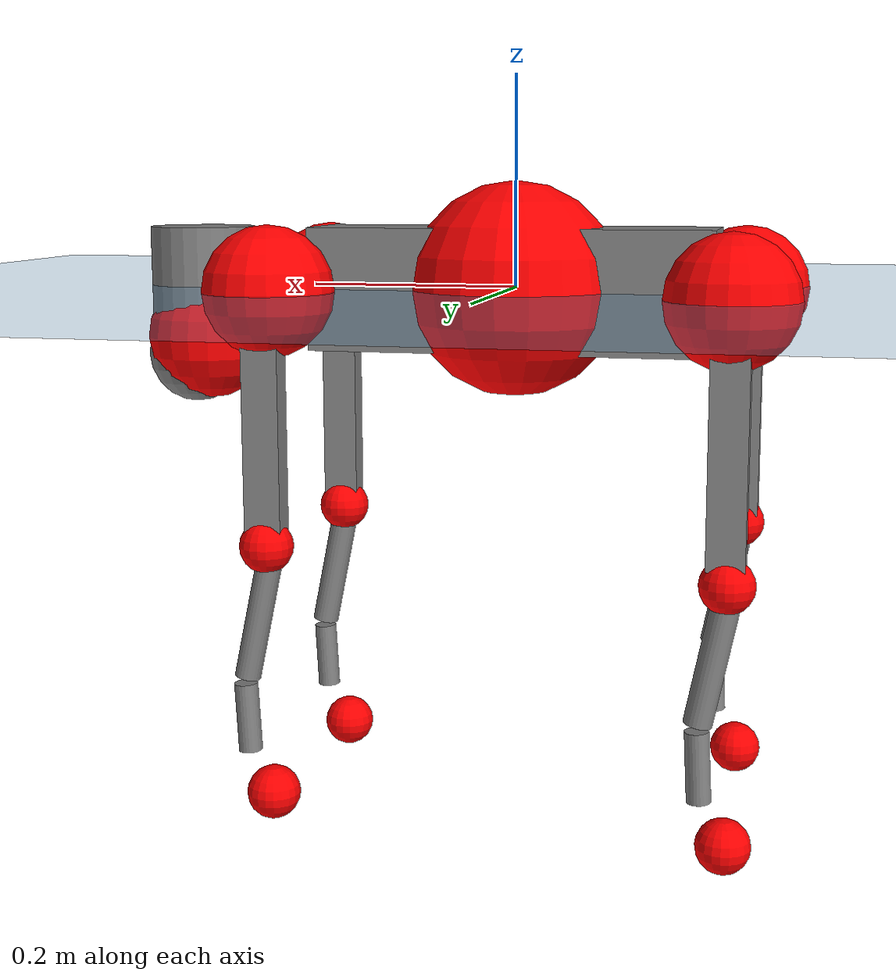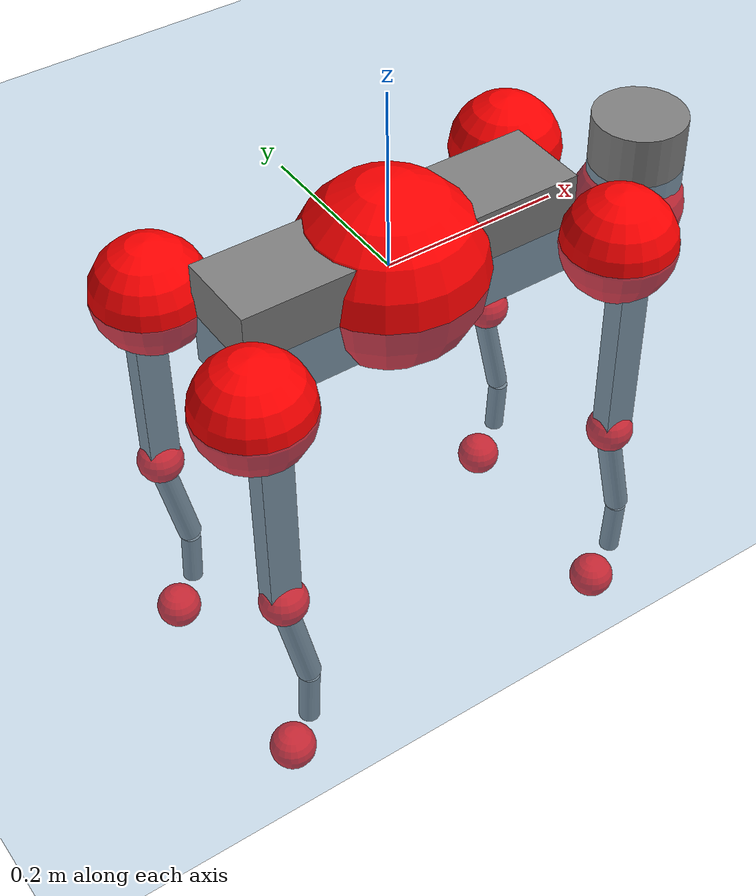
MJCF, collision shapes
<mujoco model="go2">
  <compiler angle="radian" assetdir="assets" balanceinertia="true" inertiafromgeom="false"/>

  <option timestep="0.005" density="1.2" viscosity="2e-05"/>

  <size nkey="1"/>

  <visual>
    <quality shadowsize="8192"/>
    <map shadowclip="0.5"/>
  </visual>

  <default>
    <default class="/">
      <geom contype="0" conaffinity="0" group="1" solref="-1000 -80"/>
      <site size="0.01 0.005 0.005" group="5"/>
      <general forcelimited="true" biastype="affine" gainprm="20" biasprm="0 -20 -0.5"/>
      <default class="go2">
        <joint armature="0.01" damping="0.01" frictionloss="0.2"/>
        <geom condim="1" margin="0.001"/>
        <default class="visual">
          <geom type="mesh" group="2"/>
        </default>
        <default class="collision">
          <geom group="3"/>
          <default class="foot">
            <geom size="0.022 0 0" condim="6" priority="1" friction="0.8 0.02 0.01" solimp="0.015 1 0.022"/>
          </default>
        </default>
        <default class="reward_collision_sphere">
          <geom group="5" rgba="1 0 0 1"/>
        </default>
      </default>
    </default>
  </default>

  <asset>
    <texture type="skybox" colorspace="auto" name="//unnamed_texture_0" builtin="gradient" rgb1="0.95 0.95 0.95" rgb2="0.95 0.95 0.95" width="100" height="600"/>
    <texture type="2d" colorspace="auto" name="texplane" builtin="checker" rgb1="0.345 0.575 0.748" rgb2="0.345 0.575 0.748" markrgb="1 1 1" width="512" height="512"/>
    <material name="MatPlane" class="/" texture="texplane" texuniform="true" texrepeat="2 2" specular="0.9"/>
    <material name="metal" class="/" rgba="0.9 0.95 0.95 1"/>
    <material name="black" class="/" rgba="0 0 0 1"/>
    <material name="white" class="/"/>
    <material name="gray" class="/" rgba="0.671705 0.692426 0.77427 1"/>
    <mesh name="base_0" class="/" file="base_0.obj"/>
    <mesh name="base_1" class="/" file="base_1.obj"/>
    <mesh name="base_2" class="/" file="base_2.obj"/>
    <mesh name="base_3" class="/" file="base_3.obj"/>
    <mesh name="base_4" class="/" file="base_4.obj"/>
    <mesh name="hip_0" class="/" file="hip_0.obj"/>
    <mesh name="hip_1" class="/" file="hip_1.obj"/>
    <mesh name="thigh_0" class="/" file="thigh_0.obj"/>
    <mesh name="thigh_1" class="/" file="thigh_1.obj"/>
    <mesh name="thigh_mirror_0" class="/" file="thigh_mirror_0.obj"/>
    <mesh name="thigh_mirror_1" class="/" file="thigh_mirror_1.obj"/>
    <mesh name="calf_0" class="/" file="calf_0.obj"/>
    <mesh name="calf_1" class="/" file="calf_1.obj"/>
    <mesh name="calf_mirror_0" class="/" file="calf_mirror_0.obj"/>
    <mesh name="calf_mirror_1" class="/" file="calf_mirror_1.obj"/>
    <mesh name="foot" class="/" file="foot.obj"/>
  </asset>

  <worldbody>
    <geom name="floor" class="/" size="100 100 0.125" type="plane" group="0" material="MatPlane"/>
    <light name="toplight_shadow" class="/" pos="0 0 5" dir="0.0990148 0.0990148 -0.990148" type="directional" ambient="0.04 0.04 0.04" diffuse="0.55 0.55 0.55" specular="0.12 0.12 0.12"/>
    <light name="toplight_fill" class="/" pos="0 0 5" dir="0.0990148 0.0990148 -0.990148" type="directional" castshadow="false" ambient="0.04 0.04 0.04" diffuse="0.3 0.3 0.3" specular="0.08 0.08 0.08"/>
    <body name="trunk" childclass="go2" pos="0.000509652 -0.000208492 -0.00111913" quat="1 6.32501e-05 0.000454144 -6.8666e-06">
      <inertial pos="0.0229372 0.000736657 -0.00360213" quat="0.00126107 0.704432 0.00218981 0.709767" mass="7.70336" diaginertia="0.1833 0.0395959 0.0464421"/>
      <joint name="//unnamed_joint_0" type="free" armature="0" damping="0" frictionloss="0"/>
      <geom name="//unnamed_geom_1" class="visual" material="black" mesh="base_0"/>
      <geom name="//unnamed_geom_2" class="visual" material="black" mesh="base_1"/>
      <geom name="//unnamed_geom_3" class="visual" material="black" mesh="base_2"/>
      <geom name="//unnamed_geom_4" class="visual" material="white" mesh="base_3"/>
      <geom name="//unnamed_geom_5" class="visual" material="gray" mesh="base_4"/>
      <geom name="trunk_1" class="collision" size="0.193376 0.0480612 0.0585987" type="box"/>
      <geom name="trunk_2" class="collision" size="0.0514024 0.0462621" pos="0.315912 0 0.0114083" type="cylinder"/>
      <geom name="trunk_3" class="collision" size="0.0483182" pos="0.32478 0 -0.0684495"/>
      <geom name="//unnamed_geom_9" class="reward_collision_sphere" size="0.102805"/>
      <geom name="//unnamed_geom_10" class="reward_collision_sphere" size="0.0616828" pos="0.31037 0 -0.0513372"/>
      <site name="imu" pos="-0.0155623 -0.0068265 0.0444085" size="0.0102805"/>
      <camera name="track" pos="0 -1.66971 0" quat="0.707107 0.707107 0 0" mode="trackcom"/>
      <camera name="ego_camera" pos="0.345841 0 0.0513372" quat="-0.5 -0.5 0.5 0.5"/>
      <body name="FL_hip" pos="0.215388 0.0373871 0.00136502" quat="0.999999 -0.000874881 -0.000117416 0.000648053">
        <inertial pos="-0.00696616 -0.000289792 -0.000522706" quat="0.490075 0.505199 0.506045 0.498517" mass="0.752895" diaginertia="0.00151797 0.000246151 0.000965135"/>
        <joint name="FL_hip_joint" pos="0 0 0" axis="1 6.51605e-05 -0.000271047" range="-1.05561 1.09056" armature="0.00932553" damping="0.0250068" frictionloss="0.186263"/>
        <geom name="//unnamed_geom_11" class="visual" material="metal" mesh="hip_0"/>
        <geom name="//unnamed_geom_12" class="visual" material="gray" mesh="hip_1"/>
        <geom name="//unnamed_geom_13" class="collision" size="0.0472902 0.0205609" pos="0 0.0667882 0" quat="0.707107 0.707107 0 0" type="cylinder"/>
        <geom name="//unnamed_geom_14" class="reward_collision_sphere" size="0.0616828" pos="0 0.0584397 0"/>
        <body name="FL_thigh" pos="0.000113337 0.0772503 0.00264678" quat="0.999999 0.00119426 -0.000287704 0.000149005">
          <inertial pos="-0.00168741 -0.0182723 -0.0384257" quat="0.830201 0.0782911 -0.00898706 0.551866" mass="1.27896" diaginertia="0.0101113 0.0023758 0.00165927"/>
          <joint name="FL_thigh_joint" pos="0 0 0" axis="0.0159624 0.99987 -0.00219983" stiffness="0.0107898" range="-1.6178 3.54485" armature="0.0111065" damping="0" frictionloss="0.213657"/>
          <geom name="//unnamed_geom_15" class="visual" material="metal" mesh="thigh_0"/>
          <geom name="//unnamed_geom_16" class="visual" material="gray" mesh="thigh_1"/>
          <geom name="//unnamed_geom_17" class="collision" size="0.109487 0.0125936 0.0174768" pos="0 0 -0.121498" quat="0.707107 0 0.707107 0" type="box"/>
          <body name="FL_calf" pos="5.14954e-05 0.000639431 -0.24058" quat="1 -3.50733e-05 8.76693e-05 4.41635e-05">
            <inertial pos="0.00452799 5.01058e-05 -0.163577" quat="0.711661 0.013748 -0.00640405 0.702359" mass="0.256904" diaginertia="0.00242016 0.000595206 9.71742e-05"/>
            <joint name="FL_calf_joint" pos="0 0 0" axis="-0.0350984 0.998474 0.0426417" stiffness="0.00272176" range="-2.75128 -0.784236" armature="0.0114415" damping="0.0143387" frictionloss="0.221979"/>
            <geom name="//unnamed_geom_18" class="visual" material="gray" mesh="calf_0"/>
            <geom name="//unnamed_geom_19" class="visual" material="black" mesh="calf_1"/>
            <geom name="FL_calf0" class="collision" size="0.0123366 0.0616828" pos="0.00886771 0 -0.0684495" quat="0.994493 0 -0.104807 0" type="cylinder"/>
            <geom name="//unnamed_geom_21" class="collision" size="0.0113085 0.0334115" pos="0.0221693 0 -0.168842" quat="0.999688 0 0.0249974 0" type="cylinder"/>
            <geom name="//unnamed_geom_22" class="visual" pos="0 0 -0.242996" quat="1 0 0 0" material="black" mesh="foot"/>
            <geom name="FL_foot" class="foot" size="0.0155017" pos="-0.00221693 0 -0.242996"/>
            <geom name="//unnamed_geom_24" class="reward_collision_sphere" size="0.0257012"/>
            <geom name="//unnamed_geom_25" class="reward_collision_sphere" size="0.0257012" pos="-0.00221693 0 -0.242996"/>
            <site name="FL_foot" class="foot" pos="-0.00221693 0 -0.242996" size="0.0102805"/>
          </body>
        </body>
      </body>
      <body name="FR_hip" pos="0.213178 -0.0382236 -0.0027158" quat="1 -9.07469e-06 -8.2981e-05 -0.000144079">
        <inertial pos="-0.00659295 -0.00217581 -0.000188744" quat="0.50064 0.504741 0.495783 0.498794" mass="0.728927" diaginertia="0.00146203 0.000252843 0.000952131"/>
        <joint name="FR_hip_joint" pos="0 0 0" axis="0.99992 -0.00189767 0.0124901" range="-1.0271 1.0772" armature="0.0106488" damping="0" frictionloss="0.214627"/>
        <geom name="//unnamed_geom_26" class="visual" pos="0 -2.66551e-09 -1.14329e-07" quat="4.63268e-05 1 0 0" material="metal" mesh="hip_0"/>
        <geom name="//unnamed_geom_27" class="visual" pos="0 -4.32111e-09 2.8278e-07" quat="4.63268e-05 1 0 0" material="gray" mesh="hip_1"/>
        <geom name="//unnamed_geom_28" class="collision" size="0.0472902 0.0205609" pos="0 -0.0667882 0" quat="0.707107 0.707107 0 0" type="cylinder"/>
        <geom name="//unnamed_geom_29" class="reward_collision_sphere" size="0.0616828" pos="0 -0.0584397 0"/>
        <body name="FR_thigh" pos="-0.00247814 -0.0812114 -0.00137725" quat="1 -0.000876014 -0.00037181 -3.91508e-05">
          <inertial pos="-0.00435213 0.020099 -0.0378017" quat="0.551516 -0.0220833 0.0863886 0.829385" mass="1.26928" diaginertia="0.00996471 0.00240017 0.00173909"/>
          <joint name="FR_thigh_joint" pos="0 0 0" axis="-0.000194029 -0.999998 -0.00191695" range="-3.53902 1.59588" armature="0.0100317" damping="0.00475072" frictionloss="0.170334"/>
          <geom name="//unnamed_geom_30" class="visual" material="metal" mesh="thigh_mirror_0"/>
          <geom name="//unnamed_geom_31" class="visual" material="gray" mesh="thigh_mirror_1"/>
          <geom name="//unnamed_geom_32" class="collision" size="0.109487 0.0125936 0.0174768" pos="0 0 -0.121498" quat="0.707107 0 0.707107 0" type="box"/>
          <body name="FR_calf" pos="-0.000916245 0.00171479 -0.240162" quat="1 -4.44856e-06 1.75691e-06 -6.3209e-07">
            <inertial pos="0.00764866 0.00110596 -0.16275" quat="0.703229 -0.0141015 0.00131948 0.710822" mass="0.255761" diaginertia="0.00255153 0.000589196 0.000101879"/>
            <joint name="FR_calf_joint" pos="0 0 0" axis="-0.00229872 -0.999997 -0.000744855" stiffness="0.00390586" range="0.800157 2.75178" armature="0.00890421" damping="0.016343" frictionloss="0.226558"/>
            <geom name="//unnamed_geom_33" class="visual" material="gray" mesh="calf_mirror_0"/>
            <geom name="//unnamed_geom_34" class="visual" material="black" mesh="calf_mirror_1"/>
            <geom name="FR_calf0" class="collision" size="0.0133646 0.0616828" pos="0.0110846 0 -0.0684495" quat="0.995004 0 -0.0998334 0" type="cylinder"/>
            <geom name="//unnamed_geom_36" class="collision" size="0.0113085 0.0334115" pos="0.0221693 0 -0.168842" quat="0.999688 0 0.0249974 0" type="cylinder"/>
            <geom name="//unnamed_geom_37" class="visual" pos="0 0 -0.242996" quat="1 0 0 0" material="black" mesh="foot"/>
            <geom name="FR_foot" class="foot" size="0.0255641" pos="-0.00221693 0 -0.242996"/>
            <geom name="//unnamed_geom_39" class="reward_collision_sphere" size="0.0257012"/>
            <geom name="//unnamed_geom_40" class="reward_collision_sphere" size="0.0257012" pos="-0.00221693 0 -0.242996"/>
            <site name="FR_foot" class="foot" pos="-0.00221693 0 -0.242996" size="0.0102805"/>
          </body>
        </body>
      </body>
      <body name="RL_hip" pos="-0.212021 0.0411193 -0.00166928" quat="0.999999 0.00108265 0.000243962 -0.000727099">
        <inertial pos="0.00842661 0.000479404 -3.67812e-05" quat="0.509772 0.490975 0.498827 0.500247" mass="0.746087" diaginertia="0.0014362 0.000236302 0.000940693"/>
        <joint name="RL_hip_joint" pos="0 0 0" axis="-0.999981 0.00367304 -0.00488943" range="-0.992729 1.11484" armature="0.010836" damping="0" frictionloss="0.210695"/>
        <geom name="//unnamed_geom_41" class="visual" pos="2.81926e-10 0 5.52639e-08" quat="4.63268e-05 0 1 0" material="metal" mesh="hip_0"/>
        <geom name="//unnamed_geom_42" class="visual" pos="4.57035e-10 0 4.90113e-08" quat="4.63268e-05 0 1 0" material="gray" mesh="hip_1"/>
        <geom name="//unnamed_geom_43" class="collision" size="0.0472902 0.0205609" pos="0 0.0667882 0" quat="0.707107 0.707107 0 0" type="cylinder"/>
        <geom name="//unnamed_geom_44" class="reward_collision_sphere" size="0.0616828" pos="0 0.0584397 0"/>
        <body name="RL_thigh" pos="-0.00157034 0.0825961 -0.00277354" quat="1 1.32436e-05 8.17509e-06 -2.28605e-06">
          <inertial pos="-0.00371008 -0.0184395 -0.0387682" quat="0.830301 0.0848589 -0.020727 0.550427" mass="1.24766" diaginertia="0.00986964 0.00230856 0.00174807"/>
          <joint name="RL_thigh_joint" pos="0 0 0" axis="0.00283683 0.999977 -0.00614663" stiffness="0.00385906" range="-0.538199 4.51731" armature="0.00911336" damping="0" frictionloss="0.23342"/>
          <geom name="//unnamed_geom_45" class="visual" material="metal" mesh="thigh_0"/>
          <geom name="//unnamed_geom_46" class="visual" material="gray" mesh="thigh_1"/>
          <geom name="//unnamed_geom_47" class="collision" size="0.109487 0.0125936 0.0174768" pos="0 0 -0.121498" quat="0.707107 0 0.707107 0" type="box"/>
          <body name="RL_calf" pos="-0.00155935 -0.000768395 -0.245875" quat="0.999999 -0.000790189 -0.000596549 0.000651169">
            <inertial pos="0.00716546 -2.00107e-05 -0.160879" quat="0.719486 -0.00904751 -0.00417724 0.694435" mass="0.260842" diaginertia="0.00247435 0.00059685 0.000105215"/>
            <joint name="RL_calf_joint" pos="0 0 0" axis="0.00145145 0.999998 0.00163347" stiffness="0.00292686" range="-2.71847 -0.835111" armature="0.0100584" damping="0" frictionloss="0.220383"/>
            <geom name="//unnamed_geom_48" class="visual" material="gray" mesh="calf_0"/>
            <geom name="//unnamed_geom_49" class="visual" material="black" mesh="calf_1"/>
            <geom name="RL_calf0" class="collision" size="0.0133646 0.0616828" pos="0.0110846 0 -0.0684495" quat="0.995004 0 -0.0998334 0" type="cylinder"/>
            <geom name="//unnamed_geom_51" class="collision" size="0.0113085 0.0334115" pos="0.0221693 0 -0.168842" quat="0.999688 0 0.0249974 0" type="cylinder"/>
            <geom name="//unnamed_geom_52" class="visual" pos="0 0 -0.242996" quat="1 0 0 0" material="black" mesh="foot"/>
            <geom name="RL_foot" class="foot" size="0.0171748" pos="-0.00221693 0 -0.242996"/>
            <geom name="//unnamed_geom_54" class="reward_collision_sphere" size="0.0257012"/>
            <geom name="//unnamed_geom_55" class="reward_collision_sphere" size="0.0257012" pos="-0.00221693 0 -0.242996"/>
            <site name="RL_foot" class="foot" pos="-0.00221693 0 -0.242996" size="0.0102805"/>
          </body>
        </body>
      </body>
      <body name="RR_hip" pos="-0.21404 -0.0378654 -0.00295046" quat="1 -0.00017099 2.35334e-05 0.0001542">
        <inertial pos="0.00737414 -0.00081379 -0.000593285" quat="0.494826 0.497843 0.49158 0.515411" mass="0.715962" diaginertia="0.00142403 0.000234491 0.000924013"/>
        <joint name="RR_hip_joint" pos="0 0 0" axis="-1 0.000222725 0.000103534" range="-1.04143 0.998557" armature="0.0105708" damping="0.0106478" frictionloss="0.202075"/>
        <geom name="//unnamed_geom_56" class="visual" pos="-2.91398e-10 -2.66551e-09 1.69593e-07" quat="2.14617e-09 4.63268e-05 4.63268e-05 -1" material="metal" mesh="hip_0"/>
        <geom name="//unnamed_geom_57" class="visual" pos="-4.33606e-10 -4.32111e-09 -2.33768e-07" quat="2.14617e-09 4.63268e-05 4.63268e-05 -1" material="gray" mesh="hip_1"/>
        <geom name="//unnamed_geom_58" class="collision" size="0.0472902 0.0205609" pos="0 -0.0667882 0" quat="0.707107 0.707107 0 0" type="cylinder"/>
        <geom name="//unnamed_geom_59" class="reward_collision_sphere" size="0.0616828" pos="0 -0.0584397 0"/>
        <body name="RR_thigh" pos="0.000926844 -0.0821838 -0.00184728" quat="1 -0.000175162 -3.74195e-06 -3.88996e-05">
          <inertial pos="-0.00310434 0.0166069 -0.0354063" quat="0.551632 -0.0200691 0.0849245 0.82951" mass="1.33439" diaginertia="0.0103861 0.00243986 0.00181195"/>
          <joint name="RR_thigh_joint" pos="0 0 0" axis="-0.000592943 -0.999998 -0.00165495" stiffness="0.00143556" range="-4.54439 0.522136" armature="0.00892525" damping="0" frictionloss="0.199313"/>
          <geom name="//unnamed_geom_60" class="visual" material="metal" mesh="thigh_mirror_0"/>
          <geom name="//unnamed_geom_61" class="visual" material="gray" mesh="thigh_mirror_1"/>
          <geom name="//unnamed_geom_62" class="collision" size="0.109487 0.0125936 0.0174768" pos="0 0 -0.121498" quat="0.707107 0 0.707107 0" type="box"/>
          <body name="RR_calf" pos="0.00138769 -0.00318499 -0.240111" quat="0.999999 -0.000779075 -0.000585413 -0.000552217">
            <inertial pos="0.00416735 0.000461282 -0.161728" quat="0.704276 -0.00416419 0.0009145 0.709913" mass="0.266538" diaginertia="0.00243891 0.000595002 0.000102352"/>
            <joint name="RR_calf_joint" pos="0 0 0" axis="0.00108131 -0.999999 0.000219236" range="0.801292 2.67384" armature="0.0113325" damping="0.0265777" frictionloss="0.203357"/>
            <geom name="//unnamed_geom_63" class="visual" material="gray" mesh="calf_mirror_0"/>
            <geom name="//unnamed_geom_64" class="visual" material="black" mesh="calf_mirror_1"/>
            <geom name="RR_calf0" class="collision" size="0.0133646 0.0616828" pos="0.0110846 0 -0.0684495" quat="0.995004 0 -0.0998334 0" type="cylinder"/>
            <geom name="//unnamed_geom_66" class="collision" size="0.0113085 0.0334115" pos="0.0221693 0 -0.168842" quat="0.999688 0 0.0249974 0" type="cylinder"/>
            <geom name="//unnamed_geom_67" class="visual" pos="0 0 -0.242996" quat="1 0 0 0" material="black" mesh="foot"/>
            <geom name="RR_foot" class="foot" size="0.0214515" pos="-0.00221693 0 -0.242996"/>
            <geom name="//unnamed_geom_69" class="reward_collision_sphere" size="0.0257012"/>
            <geom name="//unnamed_geom_70" class="reward_collision_sphere" size="0.0257012" pos="-0.00221693 0 -0.242996"/>
            <site name="RR_foot" class="foot" pos="-0.00221693 0 -0.242996" size="0.0102805"/>
          </body>
        </body>
      </body>
    </body>
  </worldbody>

  <contact>
    <pair class="/" geom1="floor" geom2="FL_foot" name="//unnamed_contact_0"/>
    <pair class="/" geom1="floor" geom2="FR_foot" name="//unnamed_contact_1"/>
    <pair class="/" geom1="floor" geom2="RL_foot" name="//unnamed_contact_2"/>
    <pair class="/" geom1="floor" geom2="RR_foot" name="//unnamed_contact_3"/>
  </contact>

  <actuator>
    <general name="FL_hip" class="/" joint="FL_hip_joint" forcerange="-22.7544 22.7544" gainprm="21.8719" biasprm="0 -21.8719 -0.480391"/>
    <general name="FL_thigh" class="/" joint="FL_thigh_joint" forcerange="-22.5631 22.5631" gainprm="21.8719" biasprm="0 -21.8719 -0.480391"/>
    <general name="FL_calf" class="/" joint="FL_calf_joint" forcerange="-42.1938 42.1938" gainprm="21.8719" biasprm="0 -21.8719 -0.480391"/>
    <general name="FR_hip" class="/" joint="FR_hip_joint" forcerange="-22.7944 22.7944" gainprm="21.8719" biasprm="0 -21.8719 -0.480391"/>
    <general name="FR_thigh" class="/" joint="FR_thigh_joint" forcerange="-26.5568 26.5568" gainprm="21.8719" biasprm="0 -21.8719 -0.480391"/>
    <general name="FR_calf" class="/" joint="FR_calf_joint" forcerange="-47.6004 47.6004" gainprm="21.8719" biasprm="0 -21.8719 -0.480391"/>
    <general name="RL_hip" class="/" joint="RL_hip_joint" forcerange="-24.217 24.217" gainprm="21.8719" biasprm="0 -21.8719 -0.480391"/>
    <general name="RL_thigh" class="/" joint="RL_thigh_joint" forcerange="-25.1528 25.1528" gainprm="21.8719" biasprm="0 -21.8719 -0.480391"/>
    <general name="RL_calf" class="/" joint="RL_calf_joint" forcerange="-42.5196 42.5196" gainprm="21.8719" biasprm="0 -21.8719 -0.480391"/>
    <general name="RR_hip" class="/" joint="RR_hip_joint" forcerange="-21.8997 21.8997" gainprm="21.8719" biasprm="0 -21.8719 -0.480391"/>
    <general name="RR_thigh" class="/" joint="RR_thigh_joint" forcerange="-26.1262 26.1262" gainprm="21.8719" biasprm="0 -21.8719 -0.480391"/>
    <general name="RR_calf" class="/" joint="RR_calf_joint" forcerange="-46.1961 46.1961" gainprm="21.8719" biasprm="0 -21.8719 -0.480391"/>
  </actuator>

  <sensor>
    <gyro site="imu" name="imu_angular_velocity"/>
    <velocimeter site="imu" name="imu_linear_velocity"/>
    <framelinvel objtype="site" objname="FL_foot" name="FL_foot_global_linear_velocity"/>
    <framelinvel objtype="site" objname="FR_foot" name="FR_foot_global_linear_velocity"/>
    <framelinvel objtype="site" objname="RL_foot" name="RL_foot_global_linear_velocity"/>
    <framelinvel objtype="site" objname="RR_foot" name="RR_foot_global_linear_velocity"/>
  </sensor>

  <keyframe>
    <key name="home" qpos="0 0 0.325 1 0 0 0 0.1 0.8 -1.5 -0.1 -0.8 1.5 -0.1 0.8 -1.5 0.1 -0.8 1.5"/>
  </keyframe>
</mujoco>
